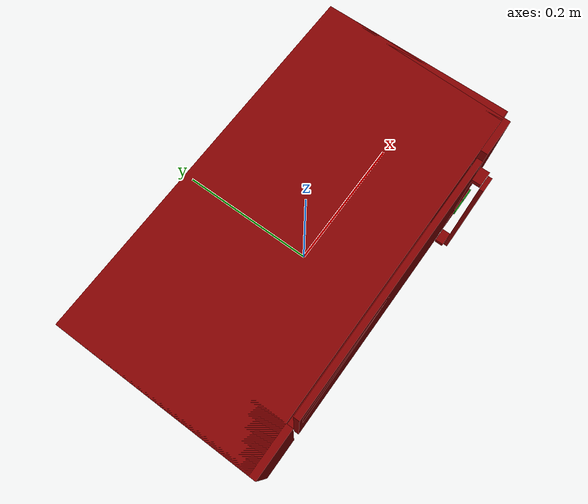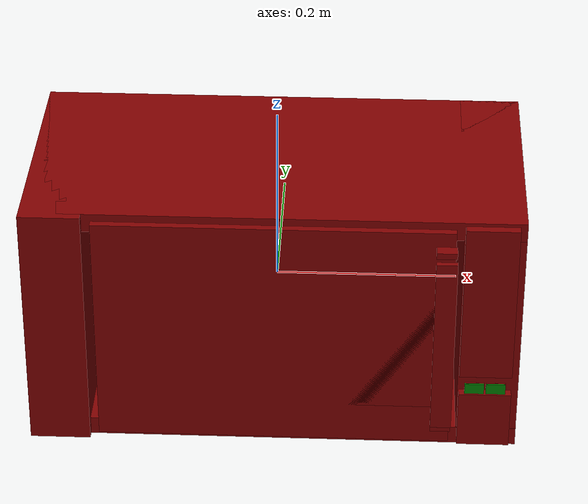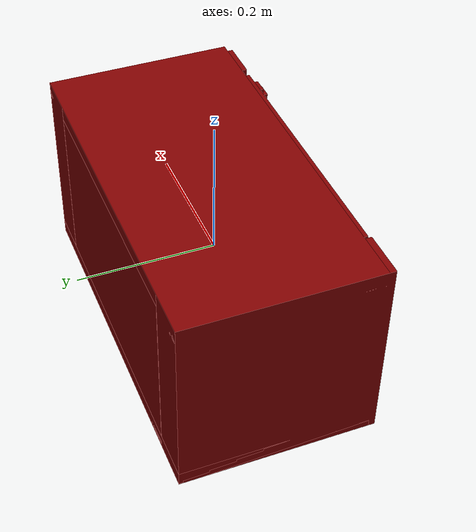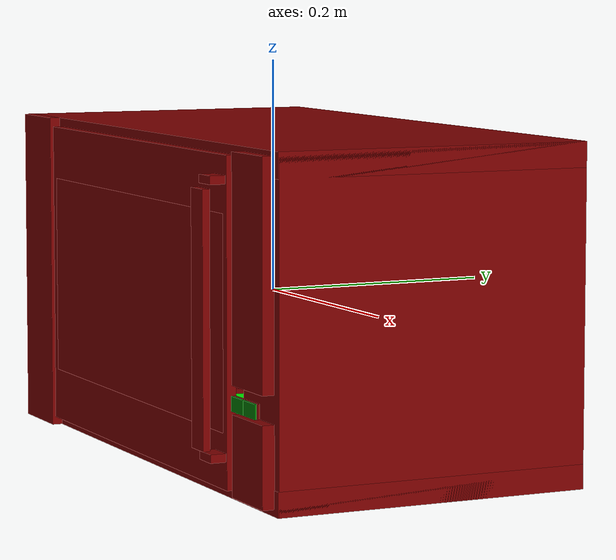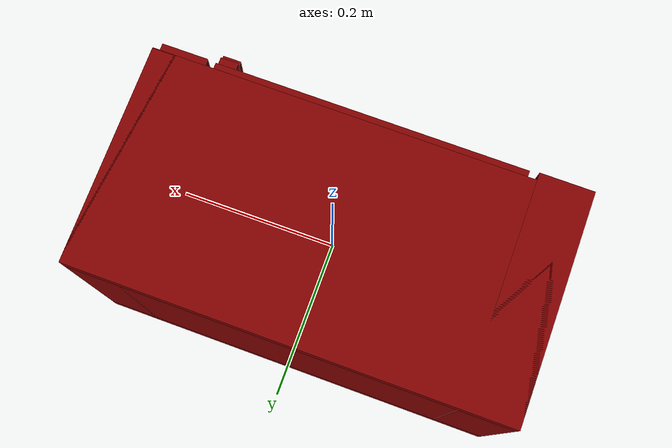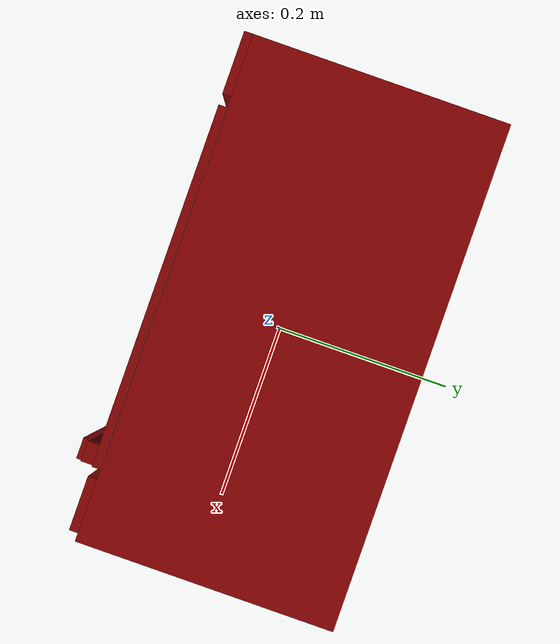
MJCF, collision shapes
<mujoco model="model">
  <compiler angle="radian"/>
  <asset>
    <mesh file="visuals/door.obj" name="door_vis"/>
    <mesh file="visuals/door_Clear.obj" name="door_Clear_vis"/>
    <mesh file="visuals/Body001.obj" name="Body001_vis"/>
    <mesh file="visuals/Button001.obj" name="Button001_vis"/>
    <mesh file="visuals/Button002.obj" name="Button002_vis"/>
    <mesh file="visuals/Disc001.obj" name="Disc001_vis"/>
    <texture file="visuals/T_BC001.png" name="Body001_material" type="2d"/>
    <material name="Body001_material" rgba="1 1 1 1.0" texture="Body001_material" shininess="0.5" specular="0.3103448502657381"/>
    <texture file="visuals/T_BC001.png" name="door_material" type="2d"/>
    <material name="door_material" rgba="1 1 1 1.0" texture="door_material" shininess="0.5" specular="0.3103448502657381"/>
    <texture file="visuals/T_BC001.png" name="door_Clear_material" type="2d"/>
    <material name="door_Clear_material" rgba="1 1 1 0.800000011920929" texture="door_Clear_material" shininess="0.5" specular="0.3103448502657381"/>
    <texture file="visuals/T_BC001.png" name="Button001_material" type="2d"/>
    <material name="Button001_material" rgba="1 1 1 1.0" texture="Button001_material" shininess="0.5" specular="0.3103448502657381"/>
    <texture file="visuals/T_BC001.png" name="Button002_material" type="2d"/>
    <material name="Button002_material" rgba="1 1 1 1.0" texture="Button002_material" shininess="0.5" specular="0.3103448502657381"/>
    <texture file="visuals/T_BC001.png" name="Disc001_material" type="2d"/>
    <material name="Disc001_material" rgba="1 1 1 1.0" texture="Disc001_material" shininess="0.5" specular="0.3103448502657381"/>
  </asset>
  <default>
    <default class="visual">
      <geom conaffinity="0" contype="0" group="1" type="mesh"/>
    </default>
    <default class="collision">
      <geom group="0" rgba="0.5 0 0 0.5"/>
    </default>
    <default class="spawn">
      <geom group="0" rgba="1 1 1 0.5" contype="0" conaffinity="0"/>
      <site group="0" rgba="1 1 1 0.5"/>
    </default>
    <default class="region">
      <geom group="1" conaffinity="0" contype="0" rgba="0 1 0 0"/>
    </default>
  </default>
  <worldbody>
    <body>
      <body name="object">
        <geom class="collision" type="box" pos="-0.0003705122508108616 0.007707029581069946 -0.10988799482584" size="0.09675932675600052 0.09675932675600052 0.0025569978170096874" quat="1.0 0.0 0.0 0.0" name="tray" rgba="0 1 0 0.5"/>
        <geom class="collision" type="box" pos="0.22060027718544006 -0.13360461592674255 -0.0600089468061924" size="0.01057369727641344 0.0008885689312592149 0.006124582141637802" quat="1.0 0.0 0.0 0.0" name="start_button" rgba="0.0 0.5 0 0.5"/>
        <geom class="collision" type="box" pos="0.24380899965763092 -0.13360461592674255 -0.0600089468061924" size="0.010622668080031872 0.0008885689312592149 0.006124582141637802" quat="1.0 0.0 0.0 0.0" name="stop_button" rgba="0.0 0.5 0 0.5"/>
        <geom mesh="Body001_vis" type="mesh" solimp="0.998 0.998 0.001" solref="0.001 1" density="100" friction="0.95 0.3 0.1" class="visual" material="Body001_material"/>
        <geom class="collision" type="box" pos="1.3766111806035042e-08 0.01564875990152359 0.13131390511989594" size="0.26906388998031616 0.13692040741443634 0.010560027323663235" quat="1.0 0.0 0.0 0.0"/>
        <geom class="collision" type="box" pos="1.3766111806035042e-08 0.015648676082491875 -0.131510391831398" size="0.26906388998031616 0.1369205266237259 0.010363596491515636" quat="1.0 0.0 0.0 0.0"/>
        <geom class="collision" type="box" pos="-0.23584848642349243 0.011056425049901009 -3.3993273973464966e-08" size="0.033215414732694626 0.14151276648044586 0.14187394082546234" quat="1.0 0.0 0.0 0.0"/>
        <geom class="collision" type="box" pos="0.23592159152030945 0.016024569049477577 -3.3993273973464966e-08" size="0.033142294734716415 0.1365446150302887 0.14187394082546234" quat="1.0 0.0 0.0 0.0"/>
        <geom class="collision" type="box" pos="0.00025522621581330895 0.14847393333911896 0.0008475892245769501" size="0.20194663107395172 0.0040952106937766075 0.13871990144252777" quat="1.0 0.0 0.0 0.0"/>
        <geom class="collision" type="box" pos="0.23257221281528473 -0.12597742676734924 0.045700449496507645" size="0.02861255779862404 0.00512611772865057 0.09242954850196838" quat="1.0 0.0 0.0 0.0"/>
        <geom class="collision" type="box" pos="0.23257221281528473 -0.12597742676734924 -0.10310130566358566" size="0.02861255779862404 0.00512611772865057 0.03325505927205086" quat="1.0 0.0 0.0 0.0"/>
        <body name="door">
          <joint axis="0.0 0.0 1.0" pos="-0.2006712704896927 -0.13128213584423065 0.0004071194271091372" limited="true" name="microjoint" range="-1.5707963267948966 0.0" type="hinge" damping="1" frictionloss="1" armature=".01" stiffness="0.05"/>
          <geom mesh="door_vis" type="mesh" solimp="0.998 0.998 0.001" solref="0.001 1" density="100" friction="0.95 0.3 0.1" class="visual" material="door_material"/>
          <geom class="collision" type="box" pos="0.0009897351264953613 -0.1270928978919983 0.0008475892245769501" size="0.19339536130428314 0.004191040061414242 0.1336539387702942" quat="1.0 0.0 0.0 0.0"/>
          <geom class="collision" type="box" pos="0.18460047245025635 -0.13920019567012787 0.11537449806928635" size="0.01095206756144762 0.006679009646177292 0.0034872705582529306" quat="1.0 0.0 0.0 0.0"/>
          <geom class="collision" type="box" pos="0.18460047245025635 -0.13920019567012787 -0.10581491887569427" size="0.010952078737318516 0.0066790152341127396 0.0034872733522206545" quat="1.0 0.0 0.0 0.0"/>
          <geom class="collision" type="box" pos="0.184824138879776 -0.14949573576450348 0.004624977707862854" size="0.011307080276310444 0.003096278291195631 0.10407356172800064" quat="1.0 0.0 0.0 0.0" name="door_handle"/>
          <body name="door_Clear">
            <geom mesh="door_Clear_vis" type="mesh" solimp="0.998 0.998 0.001" solref="0.001 1" density="100" friction="0.95 0.3 0.1" class="visual" material="door_Clear_material"/>
            <geom class="collision" type="box" pos="0.0009897351264953613 -0.1270928531885147 0.00026750739198178053" size="0.18616533279418945 0.004191088490188122 0.08767590671777725" quat="1.0 0.0 0.0 0.0"/>
          </body>
        </body>
        <body name="Button001">
          <joint axis="0.0 1.0 0.0" pos="0.22040626406669617 -0.1324399709701538 -0.05997416377067566" limited="true" name="Button001_joint" range="0.0 0.003" type="slide" damping="1" frictionloss="1" armature=".01" stiffness="0.05"/>
          <geom mesh="Button001_vis" type="mesh" solimp="0.998 0.998 0.001" solref="0.001 1" density="100" friction="0.95 0.3 0.1" class="visual" material="Button001_material"/>
          <geom class="collision" type="box" pos="0.22060027718544006 -0.13117842376232147 -0.0600089468061924" size="0.01057369727641344 0.0008693601121194661 0.006124582141637802" quat="1.0 0.0 0.0 0.0"/>
        </body>
        <body name="Button002">
          <joint axis="0.0 1.0 0.0" pos="0.2438099980354309 -0.1324399709701538 -0.059936411678791046" limited="true" name="Button002_joint" range="0.0 0.003" type="slide" damping="1" frictionloss="1" armature=".01" stiffness="0.05"/>
          <geom mesh="Button002_vis" type="mesh" solimp="0.998 0.998 0.001" solref="0.001 1" density="100" friction="0.95 0.3 0.1" class="visual" material="Button002_material"/>
          <geom class="collision" type="box" pos="0.24380899965763092 -0.13117842376232147 -0.0600089468061924" size="0.010622668080031872 0.0008693601121194661 0.006124582141637802" quat="1.0 0.0 0.0 0.0"/>
        </body>
        <body name="Disc001">
          <joint axis="0.0 0.0 1.0" pos="0.0 0.008082711137831211 -0.11615537852048874" limited="false" name="Disc001_joint" range="0 360" type="hinge" damping="1" frictionloss="1" armature=".01" stiffness="0.05"/>
          <geom mesh="Disc001_vis" type="mesh" solimp="0.998 0.998 0.001" solref="0.001 1" density="100" friction="0.95 0.3 0.1" class="visual" material="Disc001_material"/>
          <geom class="collision" type="cylinder" pos="-0.0003705122508108616 0.007707029581069946 -0.11659453064203262" size="0.09675958752632141 0.0025570045690983534" quat="1.0 0.0 0.0 0.0"/>
        </body>
        <geom class="region" name="reg_main" type="box" pos="0.0 0.01064259558916092 0.0" size="0.26906388998031616 0.141926571726799 0.14187398552894592"/>
        <geom class="region" name="reg_int" type="box" pos="-0.0006000995635986328 0.002840045839548111 -0.000977732241153717" size="0.20260047912597656 0.1160915158689022 0.1186559647321701"/>
      </body>
    </body>
  </worldbody>
  <actuator>
    <motor name="microjoint_actuator" joint="microjoint" gear="10"/>
    <motor name="Button001_joint_actuator" joint="Button001_joint" gear="0.1"/>
    <motor name="Button002_joint_actuator" joint="Button002_joint" gear="0.1"/>
    <motor name="Disc001_joint_actuator" joint="Disc001_joint" gear="10"/>
  </actuator>
</mujoco>
